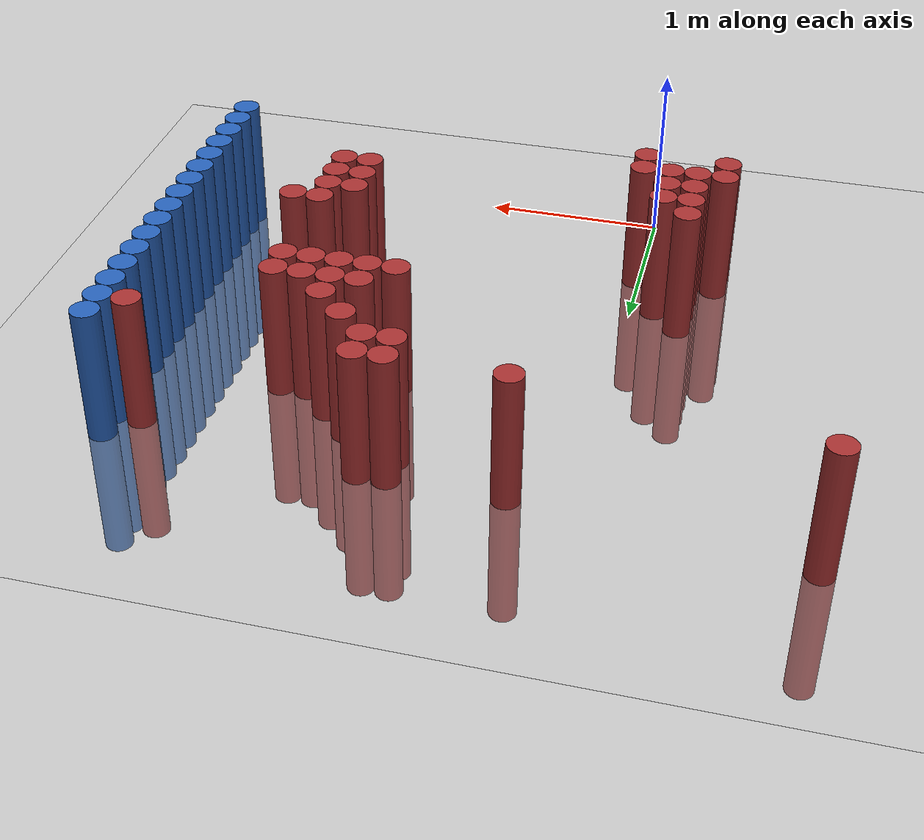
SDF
<sdf version="1.6">
 <world name="default">
  <model name="ground_plane">
   <static>1</static>
   <link name="link">
    <collision name="collision">
     <geometry><plane><normal>0 0 1</normal><size>100 100</size></plane></geometry>
     <surface><friction><ode><mu>100</mu><mu2>50</mu2></ode></friction></surface>
    </collision>
    <visual name="visual">
     <cast_shadows>0</cast_shadows>
     <geometry><plane><normal>0 0 1</normal><size>100 100</size></plane></geometry>
     <material>
      <script><uri>file://media/materials/scripts/gazebo.material</uri><name>Gazebo/Grey</name></script>
     </material>
    </visual>
   </link>
  </model>
  <model name="unit_cylinder_154">
   <static>1</static>
   <pose>-1.175000 2.875000 0.000000 0.000000 0.000000 0.000000</pose>
   <link name="link">
    <inertial>
     <mass>1</mass>
     <inertia><ixx>0.145833</ixx><ixy>0</ixy><ixz>0</ixz><iyy>0.145833</iyy><iyz>0</iyz><izz>0.125</izz></inertia>
    </inertial>
    <collision name="collision">
     <geometry><cylinder><radius>0.075000</radius><length>1.5</length></cylinder></geometry>
    </collision>
    <visual name="visual">
     <geometry><cylinder><radius>0.075000</radius><length>1.5</length></cylinder></geometry>
     <material>
      <ambient>0.648000 0.192000 0.192000 1</ambient>
      <diffuse>0.648000 0.192000 0.192000 1</diffuse>
     </material>
     <material>
      <script><name>Gazebo/Grey</name><uri>file://media/materials/scripts/gazebo.material</uri></script>
     </material>
    </visual>
   </link>
  </model>
  <model name="unit_cylinder_169">
   <static>1</static>
   <pose>-0.425000 0.475000 0.000000 0.000000 0.000000 0.000000</pose>
   <link name="link">
    <inertial>
     <mass>1</mass>
     <inertia><ixx>0.145833</ixx><ixy>0</ixy><ixz>0</ixz><iyy>0.145833</iyy><iyz>0</iyz><izz>0.125</izz></inertia>
    </inertial>
    <collision name="collision">
     <geometry><cylinder><radius>0.075000</radius><length>1.5</length></cylinder></geometry>
    </collision>
    <visual name="visual">
     <geometry><cylinder><radius>0.075000</radius><length>1.5</length></cylinder></geometry>
     <material>
      <ambient>0.648000 0.192000 0.192000 1</ambient>
      <diffuse>0.648000 0.192000 0.192000 1</diffuse>
     </material>
     <material>
      <script><name>Gazebo/Grey</name><uri>file://media/materials/scripts/gazebo.material</uri></script>
     </material>
    </visual>
   </link>
  </model>
  <model name="unit_cylinder_170">
   <static>1</static>
   <pose>-0.425000 0.625000 0.000000 0.000000 0.000000 0.000000</pose>
   <link name="link">
    <inertial>
     <mass>1</mass>
     <inertia><ixx>0.145833</ixx><ixy>0</ixy><ixz>0</ixz><iyy>0.145833</iyy><iyz>0</iyz><izz>0.125</izz></inertia>
    </inertial>
    <collision name="collision">
     <geometry><cylinder><radius>0.075000</radius><length>1.5</length></cylinder></geometry>
    </collision>
    <visual name="visual">
     <geometry><cylinder><radius>0.075000</radius><length>1.5</length></cylinder></geometry>
     <material>
      <ambient>0.648000 0.192000 0.192000 1</ambient>
      <diffuse>0.648000 0.192000 0.192000 1</diffuse>
     </material>
     <material>
      <script><name>Gazebo/Grey</name><uri>file://media/materials/scripts/gazebo.material</uri></script>
     </material>
    </visual>
   </link>
  </model>
  <model name="unit_cylinder_172">
   <static>1</static>
   <pose>-0.275000 0.625000 0.000000 0.000000 0.000000 0.000000</pose>
   <link name="link">
    <inertial>
     <mass>1</mass>
     <inertia><ixx>0.145833</ixx><ixy>0</ixy><ixz>0</ixz><iyy>0.145833</iyy><iyz>0</iyz><izz>0.125</izz></inertia>
    </inertial>
    <collision name="collision">
     <geometry><cylinder><radius>0.075000</radius><length>1.5</length></cylinder></geometry>
    </collision>
    <visual name="visual">
     <geometry><cylinder><radius>0.075000</radius><length>1.5</length></cylinder></geometry>
     <material>
      <ambient>0.648000 0.192000 0.192000 1</ambient>
      <diffuse>0.648000 0.192000 0.192000 1</diffuse>
     </material>
     <material>
      <script><name>Gazebo/Grey</name><uri>file://media/materials/scripts/gazebo.material</uri></script>
     </material>
    </visual>
   </link>
  </model>
  <model name="unit_cylinder_173">
   <static>1</static>
   <pose>-0.275000 0.775000 0.000000 0.000000 0.000000 0.000000</pose>
   <link name="link">
    <inertial>
     <mass>1</mass>
     <inertia><ixx>0.145833</ixx><ixy>0</ixy><ixz>0</ixz><iyy>0.145833</iyy><iyz>0</iyz><izz>0.125</izz></inertia>
    </inertial>
    <collision name="collision">
     <geometry><cylinder><radius>0.075000</radius><length>1.5</length></cylinder></geometry>
    </collision>
    <visual name="visual">
     <geometry><cylinder><radius>0.075000</radius><length>1.5</length></cylinder></geometry>
     <material>
      <ambient>0.648000 0.192000 0.192000 1</ambient>
      <diffuse>0.648000 0.192000 0.192000 1</diffuse>
     </material>
     <material>
      <script><name>Gazebo/Grey</name><uri>file://media/materials/scripts/gazebo.material</uri></script>
     </material>
    </visual>
   </link>
  </model>
  <model name="unit_cylinder_174">
   <static>1</static>
   <pose>-0.275000 0.925000 0.000000 0.000000 0.000000 0.000000</pose>
   <link name="link">
    <inertial>
     <mass>1</mass>
     <inertia><ixx>0.145833</ixx><ixy>0</ixy><ixz>0</ixz><iyy>0.145833</iyy><iyz>0</iyz><izz>0.125</izz></inertia>
    </inertial>
    <collision name="collision">
     <geometry><cylinder><radius>0.075000</radius><length>1.5</length></cylinder></geometry>
    </collision>
    <visual name="visual">
     <geometry><cylinder><radius>0.075000</radius><length>1.5</length></cylinder></geometry>
     <material>
      <ambient>0.648000 0.192000 0.192000 1</ambient>
      <diffuse>0.648000 0.192000 0.192000 1</diffuse>
     </material>
     <material>
      <script><name>Gazebo/Grey</name><uri>file://media/materials/scripts/gazebo.material</uri></script>
     </material>
    </visual>
   </link>
  </model>
  <model name="unit_cylinder_175">
   <static>1</static>
   <pose>-0.275000 1.075000 0.000000 0.000000 0.000000 0.000000</pose>
   <link name="link">
    <inertial>
     <mass>1</mass>
     <inertia><ixx>0.145833</ixx><ixy>0</ixy><ixz>0</ixz><iyy>0.145833</iyy><iyz>0</iyz><izz>0.125</izz></inertia>
    </inertial>
    <collision name="collision">
     <geometry><cylinder><radius>0.075000</radius><length>1.5</length></cylinder></geometry>
    </collision>
    <visual name="visual">
     <geometry><cylinder><radius>0.075000</radius><length>1.5</length></cylinder></geometry>
     <material>
      <ambient>0.648000 0.192000 0.192000 1</ambient>
      <diffuse>0.648000 0.192000 0.192000 1</diffuse>
     </material>
     <material>
      <script><name>Gazebo/Grey</name><uri>file://media/materials/scripts/gazebo.material</uri></script>
     </material>
    </visual>
   </link>
  </model>
  <model name="unit_cylinder_176">
   <static>1</static>
   <pose>-0.125000 0.625000 0.000000 0.000000 0.000000 0.000000</pose>
   <link name="link">
    <inertial>
     <mass>1</mass>
     <inertia><ixx>0.145833</ixx><ixy>0</ixy><ixz>0</ixz><iyy>0.145833</iyy><iyz>0</iyz><izz>0.125</izz></inertia>
    </inertial>
    <collision name="collision">
     <geometry><cylinder><radius>0.075000</radius><length>1.5</length></cylinder></geometry>
    </collision>
    <visual name="visual">
     <geometry><cylinder><radius>0.075000</radius><length>1.5</length></cylinder></geometry>
     <material>
      <ambient>0.648000 0.192000 0.192000 1</ambient>
      <diffuse>0.648000 0.192000 0.192000 1</diffuse>
     </material>
     <material>
      <script><name>Gazebo/Grey</name><uri>file://media/materials/scripts/gazebo.material</uri></script>
     </material>
    </visual>
   </link>
  </model>
  <model name="unit_cylinder_177">
   <static>1</static>
   <pose>-0.125000 0.775000 0.000000 0.000000 0.000000 0.000000</pose>
   <link name="link">
    <inertial>
     <mass>1</mass>
     <inertia><ixx>0.145833</ixx><ixy>0</ixy><ixz>0</ixz><iyy>0.145833</iyy><iyz>0</iyz><izz>0.125</izz></inertia>
    </inertial>
    <collision name="collision">
     <geometry><cylinder><radius>0.075000</radius><length>1.5</length></cylinder></geometry>
    </collision>
    <visual name="visual">
     <geometry><cylinder><radius>0.075000</radius><length>1.5</length></cylinder></geometry>
     <material>
      <ambient>0.648000 0.192000 0.192000 1</ambient>
      <diffuse>0.648000 0.192000 0.192000 1</diffuse>
     </material>
     <material>
      <script><name>Gazebo/Grey</name><uri>file://media/materials/scripts/gazebo.material</uri></script>
     </material>
    </visual>
   </link>
  </model>
  <model name="unit_cylinder_178">
   <static>1</static>
   <pose>-0.125000 0.925000 0.000000 0.000000 0.000000 0.000000</pose>
   <link name="link">
    <inertial>
     <mass>1</mass>
     <inertia><ixx>0.145833</ixx><ixy>0</ixy><ixz>0</ixz><iyy>0.145833</iyy><iyz>0</iyz><izz>0.125</izz></inertia>
    </inertial>
    <collision name="collision">
     <geometry><cylinder><radius>0.075000</radius><length>1.5</length></cylinder></geometry>
    </collision>
    <visual name="visual">
     <geometry><cylinder><radius>0.075000</radius><length>1.5</length></cylinder></geometry>
     <material>
      <ambient>0.648000 0.192000 0.192000 1</ambient>
      <diffuse>0.648000 0.192000 0.192000 1</diffuse>
     </material>
     <material>
      <script><name>Gazebo/Grey</name><uri>file://media/materials/scripts/gazebo.material</uri></script>
     </material>
    </visual>
   </link>
  </model>
  <model name="unit_cylinder_179">
   <static>1</static>
   <pose>0.025000 0.475000 0.000000 0.000000 0.000000 0.000000</pose>
   <link name="link">
    <inertial>
     <mass>1</mass>
     <inertia><ixx>0.145833</ixx><ixy>0</ixy><ixz>0</ixz><iyy>0.145833</iyy><iyz>0</iyz><izz>0.125</izz></inertia>
    </inertial>
    <collision name="collision">
     <geometry><cylinder><radius>0.075000</radius><length>1.5</length></cylinder></geometry>
    </collision>
    <visual name="visual">
     <geometry><cylinder><radius>0.075000</radius><length>1.5</length></cylinder></geometry>
     <material>
      <ambient>0.648000 0.192000 0.192000 1</ambient>
      <diffuse>0.648000 0.192000 0.192000 1</diffuse>
     </material>
     <material>
      <script><name>Gazebo/Grey</name><uri>file://media/materials/scripts/gazebo.material</uri></script>
     </material>
    </visual>
   </link>
  </model>
  <model name="unit_cylinder_180">
   <static>1</static>
   <pose>0.025000 0.625000 0.000000 0.000000 0.000000 0.000000</pose>
   <link name="link">
    <inertial>
     <mass>1</mass>
     <inertia><ixx>0.145833</ixx><ixy>0</ixy><ixz>0</ixz><iyy>0.145833</iyy><iyz>0</iyz><izz>0.125</izz></inertia>
    </inertial>
    <collision name="collision">
     <geometry><cylinder><radius>0.075000</radius><length>1.5</length></cylinder></geometry>
    </collision>
    <visual name="visual">
     <geometry><cylinder><radius>0.075000</radius><length>1.5</length></cylinder></geometry>
     <material>
      <ambient>0.648000 0.192000 0.192000 1</ambient>
      <diffuse>0.648000 0.192000 0.192000 1</diffuse>
     </material>
     <material>
      <script><name>Gazebo/Grey</name><uri>file://media/materials/scripts/gazebo.material</uri></script>
     </material>
    </visual>
   </link>
  </model>
  <model name="unit_cylinder_181">
   <static>1</static>
   <pose>0.325000 2.725000 0.000000 0.000000 0.000000 0.000000</pose>
   <link name="link">
    <inertial>
     <mass>1</mass>
     <inertia><ixx>0.145833</ixx><ixy>0</ixy><ixz>0</ixz><iyy>0.145833</iyy><iyz>0</iyz><izz>0.125</izz></inertia>
    </inertial>
    <collision name="collision">
     <geometry><cylinder><radius>0.075000</radius><length>1.5</length></cylinder></geometry>
    </collision>
    <visual name="visual">
     <geometry><cylinder><radius>0.075000</radius><length>1.5</length></cylinder></geometry>
     <material>
      <ambient>0.648000 0.192000 0.192000 1</ambient>
      <diffuse>0.648000 0.192000 0.192000 1</diffuse>
     </material>
     <material>
      <script><name>Gazebo/Grey</name><uri>file://media/materials/scripts/gazebo.material</uri></script>
     </material>
    </visual>
   </link>
  </model>
  <model name="unit_cylinder_198">
   <static>1</static>
   <pose>0.925000 2.575000 0.000000 0.000000 0.000000 0.000000</pose>
   <link name="link">
    <inertial>
     <mass>1</mass>
     <inertia><ixx>0.145833</ixx><ixy>0</ixy><ixz>0</ixz><iyy>0.145833</iyy><iyz>0</iyz><izz>0.125</izz></inertia>
    </inertial>
    <collision name="collision">
     <geometry><cylinder><radius>0.075000</radius><length>1.5</length></cylinder></geometry>
    </collision>
    <visual name="visual">
     <geometry><cylinder><radius>0.075000</radius><length>1.5</length></cylinder></geometry>
     <material>
      <ambient>0.648000 0.192000 0.192000 1</ambient>
      <diffuse>0.648000 0.192000 0.192000 1</diffuse>
     </material>
     <material>
      <script><name>Gazebo/Grey</name><uri>file://media/materials/scripts/gazebo.material</uri></script>
     </material>
    </visual>
   </link>
  </model>
  <model name="unit_cylinder_199">
   <static>1</static>
   <pose>0.925000 2.725000 0.000000 0.000000 0.000000 0.000000</pose>
   <link name="link">
    <inertial>
     <mass>1</mass>
     <inertia><ixx>0.145833</ixx><ixy>0</ixy><ixz>0</ixz><iyy>0.145833</iyy><iyz>0</iyz><izz>0.125</izz></inertia>
    </inertial>
    <collision name="collision">
     <geometry><cylinder><radius>0.075000</radius><length>1.5</length></cylinder></geometry>
    </collision>
    <visual name="visual">
     <geometry><cylinder><radius>0.075000</radius><length>1.5</length></cylinder></geometry>
     <material>
      <ambient>0.648000 0.192000 0.192000 1</ambient>
      <diffuse>0.648000 0.192000 0.192000 1</diffuse>
     </material>
     <material>
      <script><name>Gazebo/Grey</name><uri>file://media/materials/scripts/gazebo.material</uri></script>
     </material>
    </visual>
   </link>
  </model>
  <model name="unit_cylinder_200">
   <static>1</static>
   <pose>1.075000 1.975000 0.000000 0.000000 0.000000 0.000000</pose>
   <link name="link">
    <inertial>
     <mass>1</mass>
     <inertia><ixx>0.145833</ixx><ixy>0</ixy><ixz>0</ixz><iyy>0.145833</iyy><iyz>0</iyz><izz>0.125</izz></inertia>
    </inertial>
    <collision name="collision">
     <geometry><cylinder><radius>0.075000</radius><length>1.5</length></cylinder></geometry>
    </collision>
    <visual name="visual">
     <geometry><cylinder><radius>0.075000</radius><length>1.5</length></cylinder></geometry>
     <material>
      <ambient>0.648000 0.192000 0.192000 1</ambient>
      <diffuse>0.648000 0.192000 0.192000 1</diffuse>
     </material>
     <material>
      <script><name>Gazebo/Grey</name><uri>file://media/materials/scripts/gazebo.material</uri></script>
     </material>
    </visual>
   </link>
  </model>
  <model name="unit_cylinder_201">
   <static>1</static>
   <pose>1.075000 2.575000 0.000000 0.000000 0.000000 0.000000</pose>
   <link name="link">
    <inertial>
     <mass>1</mass>
     <inertia><ixx>0.145833</ixx><ixy>0</ixy><ixz>0</ixz><iyy>0.145833</iyy><iyz>0</iyz><izz>0.125</izz></inertia>
    </inertial>
    <collision name="collision">
     <geometry><cylinder><radius>0.075000</radius><length>1.5</length></cylinder></geometry>
    </collision>
    <visual name="visual">
     <geometry><cylinder><radius>0.075000</radius><length>1.5</length></cylinder></geometry>
     <material>
      <ambient>0.648000 0.192000 0.192000 1</ambient>
      <diffuse>0.648000 0.192000 0.192000 1</diffuse>
     </material>
     <material>
      <script><name>Gazebo/Grey</name><uri>file://media/materials/scripts/gazebo.material</uri></script>
     </material>
    </visual>
   </link>
  </model>
  <model name="unit_cylinder_202">
   <static>1</static>
   <pose>1.075000 2.725000 0.000000 0.000000 0.000000 0.000000</pose>
   <link name="link">
    <inertial>
     <mass>1</mass>
     <inertia><ixx>0.145833</ixx><ixy>0</ixy><ixz>0</ixz><iyy>0.145833</iyy><iyz>0</iyz><izz>0.125</izz></inertia>
    </inertial>
    <collision name="collision">
     <geometry><cylinder><radius>0.075000</radius><length>1.5</length></cylinder></geometry>
    </collision>
    <visual name="visual">
     <geometry><cylinder><radius>0.075000</radius><length>1.5</length></cylinder></geometry>
     <material>
      <ambient>0.648000 0.192000 0.192000 1</ambient>
      <diffuse>0.648000 0.192000 0.192000 1</diffuse>
     </material>
     <material>
      <script><name>Gazebo/Grey</name><uri>file://media/materials/scripts/gazebo.material</uri></script>
     </material>
    </visual>
   </link>
  </model>
  <model name="unit_cylinder_204">
   <static>1</static>
   <pose>1.225000 1.975000 0.000000 0.000000 0.000000 0.000000</pose>
   <link name="link">
    <inertial>
     <mass>1</mass>
     <inertia><ixx>0.145833</ixx><ixy>0</ixy><ixz>0</ixz><iyy>0.145833</iyy><iyz>0</iyz><izz>0.125</izz></inertia>
    </inertial>
    <collision name="collision">
     <geometry><cylinder><radius>0.075000</radius><length>1.5</length></cylinder></geometry>
    </collision>
    <visual name="visual">
     <geometry><cylinder><radius>0.075000</radius><length>1.5</length></cylinder></geometry>
     <material>
      <ambient>0.648000 0.192000 0.192000 1</ambient>
      <diffuse>0.648000 0.192000 0.192000 1</diffuse>
     </material>
     <material>
      <script><name>Gazebo/Grey</name><uri>file://media/materials/scripts/gazebo.material</uri></script>
     </material>
    </visual>
   </link>
  </model>
  <model name="unit_cylinder_205">
   <static>1</static>
   <pose>1.225000 2.125000 0.000000 0.000000 0.000000 0.000000</pose>
   <link name="link">
    <inertial>
     <mass>1</mass>
     <inertia><ixx>0.145833</ixx><ixy>0</ixy><ixz>0</ixz><iyy>0.145833</iyy><iyz>0</iyz><izz>0.125</izz></inertia>
    </inertial>
    <collision name="collision">
     <geometry><cylinder><radius>0.075000</radius><length>1.5</length></cylinder></geometry>
    </collision>
    <visual name="visual">
     <geometry><cylinder><radius>0.075000</radius><length>1.5</length></cylinder></geometry>
     <material>
      <ambient>0.648000 0.192000 0.192000 1</ambient>
      <diffuse>0.648000 0.192000 0.192000 1</diffuse>
     </material>
     <material>
      <script><name>Gazebo/Grey</name><uri>file://media/materials/scripts/gazebo.material</uri></script>
     </material>
    </visual>
   </link>
  </model>
  <model name="unit_cylinder_206">
   <static>1</static>
   <pose>1.225000 2.425000 0.000000 0.000000 0.000000 0.000000</pose>
   <link name="link">
    <inertial>
     <mass>1</mass>
     <inertia><ixx>0.145833</ixx><ixy>0</ixy><ixz>0</ixz><iyy>0.145833</iyy><iyz>0</iyz><izz>0.125</izz></inertia>
    </inertial>
    <collision name="collision">
     <geometry><cylinder><radius>0.075000</radius><length>1.5</length></cylinder></geometry>
    </collision>
    <visual name="visual">
     <geometry><cylinder><radius>0.075000</radius><length>1.5</length></cylinder></geometry>
     <material>
      <ambient>0.648000 0.192000 0.192000 1</ambient>
      <diffuse>0.648000 0.192000 0.192000 1</diffuse>
     </material>
     <material>
      <script><name>Gazebo/Grey</name><uri>file://media/materials/scripts/gazebo.material</uri></script>
     </material>
    </visual>
   </link>
  </model>
  <model name="unit_cylinder_207">
   <static>1</static>
   <pose>1.375000 1.975000 0.000000 0.000000 0.000000 0.000000</pose>
   <link name="link">
    <inertial>
     <mass>1</mass>
     <inertia><ixx>0.145833</ixx><ixy>0</ixy><ixz>0</ixz><iyy>0.145833</iyy><iyz>0</iyz><izz>0.125</izz></inertia>
    </inertial>
    <collision name="collision">
     <geometry><cylinder><radius>0.075000</radius><length>1.5</length></cylinder></geometry>
    </collision>
    <visual name="visual">
     <geometry><cylinder><radius>0.075000</radius><length>1.5</length></cylinder></geometry>
     <material>
      <ambient>0.648000 0.192000 0.192000 1</ambient>
      <diffuse>0.648000 0.192000 0.192000 1</diffuse>
     </material>
     <material>
      <script><name>Gazebo/Grey</name><uri>file://media/materials/scripts/gazebo.material</uri></script>
     </material>
    </visual>
   </link>
  </model>
  <model name="unit_cylinder_208">
   <static>1</static>
   <pose>1.375000 2.125000 0.000000 0.000000 0.000000 0.000000</pose>
   <link name="link">
    <inertial>
     <mass>1</mass>
     <inertia><ixx>0.145833</ixx><ixy>0</ixy><ixz>0</ixz><iyy>0.145833</iyy><iyz>0</iyz><izz>0.125</izz></inertia>
    </inertial>
    <collision name="collision">
     <geometry><cylinder><radius>0.075000</radius><length>1.5</length></cylinder></geometry>
    </collision>
    <visual name="visual">
     <geometry><cylinder><radius>0.075000</radius><length>1.5</length></cylinder></geometry>
     <material>
      <ambient>0.648000 0.192000 0.192000 1</ambient>
      <diffuse>0.648000 0.192000 0.192000 1</diffuse>
     </material>
     <material>
      <script><name>Gazebo/Grey</name><uri>file://media/materials/scripts/gazebo.material</uri></script>
     </material>
    </visual>
   </link>
  </model>
  <model name="unit_cylinder_209">
   <static>1</static>
   <pose>1.375000 2.275000 0.000000 0.000000 0.000000 0.000000</pose>
   <link name="link">
    <inertial>
     <mass>1</mass>
     <inertia><ixx>0.145833</ixx><ixy>0</ixy><ixz>0</ixz><iyy>0.145833</iyy><iyz>0</iyz><izz>0.125</izz></inertia>
    </inertial>
    <collision name="collision">
     <geometry><cylinder><radius>0.075000</radius><length>1.5</length></cylinder></geometry>
    </collision>
    <visual name="visual">
     <geometry><cylinder><radius>0.075000</radius><length>1.5</length></cylinder></geometry>
     <material>
      <ambient>0.648000 0.192000 0.192000 1</ambient>
      <diffuse>0.648000 0.192000 0.192000 1</diffuse>
     </material>
     <material>
      <script><name>Gazebo/Grey</name><uri>file://media/materials/scripts/gazebo.material</uri></script>
     </material>
    </visual>
   </link>
  </model>
  <model name="unit_cylinder_211">
   <static>1</static>
   <pose>1.525000 0.925000 0.000000 0.000000 0.000000 0.000000</pose>
   <link name="link">
    <inertial>
     <mass>1</mass>
     <inertia><ixx>0.145833</ixx><ixy>0</ixy><ixz>0</ixz><iyy>0.145833</iyy><iyz>0</iyz><izz>0.125</izz></inertia>
    </inertial>
    <collision name="collision">
     <geometry><cylinder><radius>0.075000</radius><length>1.5</length></cylinder></geometry>
    </collision>
    <visual name="visual">
     <geometry><cylinder><radius>0.075000</radius><length>1.5</length></cylinder></geometry>
     <material>
      <ambient>0.648000 0.192000 0.192000 1</ambient>
      <diffuse>0.648000 0.192000 0.192000 1</diffuse>
     </material>
     <material>
      <script><name>Gazebo/Grey</name><uri>file://media/materials/scripts/gazebo.material</uri></script>
     </material>
    </visual>
   </link>
  </model>
  <model name="unit_cylinder_212">
   <static>1</static>
   <pose>1.525000 1.075000 0.000000 0.000000 0.000000 0.000000</pose>
   <link name="link">
    <inertial>
     <mass>1</mass>
     <inertia><ixx>0.145833</ixx><ixy>0</ixy><ixz>0</ixz><iyy>0.145833</iyy><iyz>0</iyz><izz>0.125</izz></inertia>
    </inertial>
    <collision name="collision">
     <geometry><cylinder><radius>0.075000</radius><length>1.5</length></cylinder></geometry>
    </collision>
    <visual name="visual">
     <geometry><cylinder><radius>0.075000</radius><length>1.5</length></cylinder></geometry>
     <material>
      <ambient>0.648000 0.192000 0.192000 1</ambient>
      <diffuse>0.648000 0.192000 0.192000 1</diffuse>
     </material>
     <material>
      <script><name>Gazebo/Grey</name><uri>file://media/materials/scripts/gazebo.material</uri></script>
     </material>
    </visual>
   </link>
  </model>
  <model name="unit_cylinder_213">
   <static>1</static>
   <pose>1.525000 1.225000 0.000000 0.000000 0.000000 0.000000</pose>
   <link name="link">
    <inertial>
     <mass>1</mass>
     <inertia><ixx>0.145833</ixx><ixy>0</ixy><ixz>0</ixz><iyy>0.145833</iyy><iyz>0</iyz><izz>0.125</izz></inertia>
    </inertial>
    <collision name="collision">
     <geometry><cylinder><radius>0.075000</radius><length>1.5</length></cylinder></geometry>
    </collision>
    <visual name="visual">
     <geometry><cylinder><radius>0.075000</radius><length>1.5</length></cylinder></geometry>
     <material>
      <ambient>0.648000 0.192000 0.192000 1</ambient>
      <diffuse>0.648000 0.192000 0.192000 1</diffuse>
     </material>
     <material>
      <script><name>Gazebo/Grey</name><uri>file://media/materials/scripts/gazebo.material</uri></script>
     </material>
    </visual>
   </link>
  </model>
  <model name="unit_cylinder_214">
   <static>1</static>
   <pose>1.525000 1.975000 0.000000 0.000000 0.000000 0.000000</pose>
   <link name="link">
    <inertial>
     <mass>1</mass>
     <inertia><ixx>0.145833</ixx><ixy>0</ixy><ixz>0</ixz><iyy>0.145833</iyy><iyz>0</iyz><izz>0.125</izz></inertia>
    </inertial>
    <collision name="collision">
     <geometry><cylinder><radius>0.075000</radius><length>1.5</length></cylinder></geometry>
    </collision>
    <visual name="visual">
     <geometry><cylinder><radius>0.075000</radius><length>1.5</length></cylinder></geometry>
     <material>
      <ambient>0.648000 0.192000 0.192000 1</ambient>
      <diffuse>0.648000 0.192000 0.192000 1</diffuse>
     </material>
     <material>
      <script><name>Gazebo/Grey</name><uri>file://media/materials/scripts/gazebo.material</uri></script>
     </material>
    </visual>
   </link>
  </model>
  <model name="unit_cylinder_215">
   <static>1</static>
   <pose>1.525000 2.125000 0.000000 0.000000 0.000000 0.000000</pose>
   <link name="link">
    <inertial>
     <mass>1</mass>
     <inertia><ixx>0.145833</ixx><ixy>0</ixy><ixz>0</ixz><iyy>0.145833</iyy><iyz>0</iyz><izz>0.125</izz></inertia>
    </inertial>
    <collision name="collision">
     <geometry><cylinder><radius>0.075000</radius><length>1.5</length></cylinder></geometry>
    </collision>
    <visual name="visual">
     <geometry><cylinder><radius>0.075000</radius><length>1.5</length></cylinder></geometry>
     <material>
      <ambient>0.648000 0.192000 0.192000 1</ambient>
      <diffuse>0.648000 0.192000 0.192000 1</diffuse>
     </material>
     <material>
      <script><name>Gazebo/Grey</name><uri>file://media/materials/scripts/gazebo.material</uri></script>
     </material>
    </visual>
   </link>
  </model>
  <model name="unit_cylinder_219">
   <static>1</static>
   <pose>1.675000 0.925000 0.000000 0.000000 0.000000 0.000000</pose>
   <link name="link">
    <inertial>
     <mass>1</mass>
     <inertia><ixx>0.145833</ixx><ixy>0</ixy><ixz>0</ixz><iyy>0.145833</iyy><iyz>0</iyz><izz>0.125</izz></inertia>
    </inertial>
    <collision name="collision">
     <geometry><cylinder><radius>0.075000</radius><length>1.5</length></cylinder></geometry>
    </collision>
    <visual name="visual">
     <geometry><cylinder><radius>0.075000</radius><length>1.5</length></cylinder></geometry>
     <material>
      <ambient>0.648000 0.192000 0.192000 1</ambient>
      <diffuse>0.648000 0.192000 0.192000 1</diffuse>
     </material>
     <material>
      <script><name>Gazebo/Grey</name><uri>file://media/materials/scripts/gazebo.material</uri></script>
     </material>
    </visual>
   </link>
  </model>
  <model name="unit_cylinder_220">
   <static>1</static>
   <pose>1.675000 1.075000 0.000000 0.000000 0.000000 0.000000</pose>
   <link name="link">
    <inertial>
     <mass>1</mass>
     <inertia><ixx>0.145833</ixx><ixy>0</ixy><ixz>0</ixz><iyy>0.145833</iyy><iyz>0</iyz><izz>0.125</izz></inertia>
    </inertial>
    <collision name="collision">
     <geometry><cylinder><radius>0.075000</radius><length>1.5</length></cylinder></geometry>
    </collision>
    <visual name="visual">
     <geometry><cylinder><radius>0.075000</radius><length>1.5</length></cylinder></geometry>
     <material>
      <ambient>0.648000 0.192000 0.192000 1</ambient>
      <diffuse>0.648000 0.192000 0.192000 1</diffuse>
     </material>
     <material>
      <script><name>Gazebo/Grey</name><uri>file://media/materials/scripts/gazebo.material</uri></script>
     </material>
    </visual>
   </link>
  </model>
  <model name="unit_cylinder_221">
   <static>1</static>
   <pose>1.675000 1.225000 0.000000 0.000000 0.000000 0.000000</pose>
   <link name="link">
    <inertial>
     <mass>1</mass>
     <inertia><ixx>0.145833</ixx><ixy>0</ixy><ixz>0</ixz><iyy>0.145833</iyy><iyz>0</iyz><izz>0.125</izz></inertia>
    </inertial>
    <collision name="collision">
     <geometry><cylinder><radius>0.075000</radius><length>1.5</length></cylinder></geometry>
    </collision>
    <visual name="visual">
     <geometry><cylinder><radius>0.075000</radius><length>1.5</length></cylinder></geometry>
     <material>
      <ambient>0.648000 0.192000 0.192000 1</ambient>
      <diffuse>0.648000 0.192000 0.192000 1</diffuse>
     </material>
     <material>
      <script><name>Gazebo/Grey</name><uri>file://media/materials/scripts/gazebo.material</uri></script>
     </material>
    </visual>
   </link>
  </model>
  <model name="unit_cylinder_222">
   <static>1</static>
   <pose>1.675000 1.375000 0.000000 0.000000 0.000000 0.000000</pose>
   <link name="link">
    <inertial>
     <mass>1</mass>
     <inertia><ixx>0.145833</ixx><ixy>0</ixy><ixz>0</ixz><iyy>0.145833</iyy><iyz>0</iyz><izz>0.125</izz></inertia>
    </inertial>
    <collision name="collision">
     <geometry><cylinder><radius>0.075000</radius><length>1.5</length></cylinder></geometry>
    </collision>
    <visual name="visual">
     <geometry><cylinder><radius>0.075000</radius><length>1.5</length></cylinder></geometry>
     <material>
      <ambient>0.648000 0.192000 0.192000 1</ambient>
      <diffuse>0.648000 0.192000 0.192000 1</diffuse>
     </material>
     <material>
      <script><name>Gazebo/Grey</name><uri>file://media/materials/scripts/gazebo.material</uri></script>
     </material>
    </visual>
   </link>
  </model>
  <model name="unit_cylinder_223">
   <static>1</static>
   <pose>1.675000 1.975000 0.000000 0.000000 0.000000 0.000000</pose>
   <link name="link">
    <inertial>
     <mass>1</mass>
     <inertia><ixx>0.145833</ixx><ixy>0</ixy><ixz>0</ixz><iyy>0.145833</iyy><iyz>0</iyz><izz>0.125</izz></inertia>
    </inertial>
    <collision name="collision">
     <geometry><cylinder><radius>0.075000</radius><length>1.5</length></cylinder></geometry>
    </collision>
    <visual name="visual">
     <geometry><cylinder><radius>0.075000</radius><length>1.5</length></cylinder></geometry>
     <material>
      <ambient>0.648000 0.192000 0.192000 1</ambient>
      <diffuse>0.648000 0.192000 0.192000 1</diffuse>
     </material>
     <material>
      <script><name>Gazebo/Grey</name><uri>file://media/materials/scripts/gazebo.material</uri></script>
     </material>
    </visual>
   </link>
  </model>
  <model name="unit_cylinder_224">
   <static>1</static>
   <pose>1.675000 2.125000 0.000000 0.000000 0.000000 0.000000</pose>
   <link name="link">
    <inertial>
     <mass>1</mass>
     <inertia><ixx>0.145833</ixx><ixy>0</ixy><ixz>0</ixz><iyy>0.145833</iyy><iyz>0</iyz><izz>0.125</izz></inertia>
    </inertial>
    <collision name="collision">
     <geometry><cylinder><radius>0.075000</radius><length>1.5</length></cylinder></geometry>
    </collision>
    <visual name="visual">
     <geometry><cylinder><radius>0.075000</radius><length>1.5</length></cylinder></geometry>
     <material>
      <ambient>0.648000 0.192000 0.192000 1</ambient>
      <diffuse>0.648000 0.192000 0.192000 1</diffuse>
     </material>
     <material>
      <script><name>Gazebo/Grey</name><uri>file://media/materials/scripts/gazebo.material</uri></script>
     </material>
    </visual>
   </link>
  </model>
  <model name="unit_cylinder_229">
   <static>1</static>
   <pose>1.825000 1.375000 0.000000 0.000000 0.000000 0.000000</pose>
   <link name="link">
    <inertial>
     <mass>1</mass>
     <inertia><ixx>0.145833</ixx><ixy>0</ixy><ixz>0</ixz><iyy>0.145833</iyy><iyz>0</iyz><izz>0.125</izz></inertia>
    </inertial>
    <collision name="collision">
     <geometry><cylinder><radius>0.075000</radius><length>1.5</length></cylinder></geometry>
    </collision>
    <visual name="visual">
     <geometry><cylinder><radius>0.075000</radius><length>1.5</length></cylinder></geometry>
     <material>
      <ambient>0.648000 0.192000 0.192000 1</ambient>
      <diffuse>0.648000 0.192000 0.192000 1</diffuse>
     </material>
     <material>
      <script><name>Gazebo/Grey</name><uri>file://media/materials/scripts/gazebo.material</uri></script>
     </material>
    </visual>
   </link>
  </model>
  <model name="unit_cylinder_234">
   <static>1</static>
   <pose>2.275000 2.575000 0.000000 0.000000 0.000000 0.000000</pose>
   <link name="link">
    <inertial>
     <mass>1</mass>
     <inertia><ixx>0.145833</ixx><ixy>0</ixy><ixz>0</ixz><iyy>0.145833</iyy><iyz>0</iyz><izz>0.125</izz></inertia>
    </inertial>
    <collision name="collision">
     <geometry><cylinder><radius>0.075000</radius><length>1.5</length></cylinder></geometry>
    </collision>
    <visual name="visual">
     <geometry><cylinder><radius>0.075000</radius><length>1.5</length></cylinder></geometry>
     <material>
      <ambient>0.648000 0.192000 0.192000 1</ambient>
      <diffuse>0.648000 0.192000 0.192000 1</diffuse>
     </material>
     <material>
      <script><name>Gazebo/Grey</name><uri>file://media/materials/scripts/gazebo.material</uri></script>
     </material>
    </visual>
   </link>
  </model>
  <model name="unit_cylinder_240">
   <static>1</static>
   <pose>2.425000 0.475000 0.000000 0.000000 0.000000 0.000000</pose>
   <link name="link">
    <inertial>
     <mass>1</mass>
     <inertia><ixx>0.145833</ixx><ixy>0</ixy><ixz>0</ixz><iyy>0.145833</iyy><iyz>0</iyz><izz>0.125</izz></inertia>
    </inertial>
    <collision name="collision">
     <geometry><cylinder><radius>0.075000</radius><length>1.5</length></cylinder></geometry>
    </collision>
    <visual name="visual">
     <geometry><cylinder><radius>0.075000</radius><length>1.5</length></cylinder></geometry>
     <material>
      <ambient>0.152000 0.379000 0.720000 1</ambient>
      <diffuse>0.152000 0.379000 0.720000 1</diffuse>
     </material>
     <material>
      <script><name>Gazebo/Grey</name><uri>file://media/materials/scripts/gazebo.material</uri></script>
     </material>
    </visual>
   </link>
  </model>
  <model name="unit_cylinder_241">
   <static>1</static>
   <pose>2.425000 0.625000 0.000000 0.000000 0.000000 0.000000</pose>
   <link name="link">
    <inertial>
     <mass>1</mass>
     <inertia><ixx>0.145833</ixx><ixy>0</ixy><ixz>0</ixz><iyy>0.145833</iyy><iyz>0</iyz><izz>0.125</izz></inertia>
    </inertial>
    <collision name="collision">
     <geometry><cylinder><radius>0.075000</radius><length>1.5</length></cylinder></geometry>
    </collision>
    <visual name="visual">
     <geometry><cylinder><radius>0.075000</radius><length>1.5</length></cylinder></geometry>
     <material>
      <ambient>0.152000 0.379000 0.720000 1</ambient>
      <diffuse>0.152000 0.379000 0.720000 1</diffuse>
     </material>
     <material>
      <script><name>Gazebo/Grey</name><uri>file://media/materials/scripts/gazebo.material</uri></script>
     </material>
    </visual>
   </link>
  </model>
  <model name="unit_cylinder_242">
   <static>1</static>
   <pose>2.425000 0.775000 0.000000 0.000000 0.000000 0.000000</pose>
   <link name="link">
    <inertial>
     <mass>1</mass>
     <inertia><ixx>0.145833</ixx><ixy>0</ixy><ixz>0</ixz><iyy>0.145833</iyy><iyz>0</iyz><izz>0.125</izz></inertia>
    </inertial>
    <collision name="collision">
     <geometry><cylinder><radius>0.075000</radius><length>1.5</length></cylinder></geometry>
    </collision>
    <visual name="visual">
     <geometry><cylinder><radius>0.075000</radius><length>1.5</length></cylinder></geometry>
     <material>
      <ambient>0.152000 0.379000 0.720000 1</ambient>
      <diffuse>0.152000 0.379000 0.720000 1</diffuse>
     </material>
     <material>
      <script><name>Gazebo/Grey</name><uri>file://media/materials/scripts/gazebo.material</uri></script>
     </material>
    </visual>
   </link>
  </model>
  <model name="unit_cylinder_243">
   <static>1</static>
   <pose>2.425000 0.925000 0.000000 0.000000 0.000000 0.000000</pose>
   <link name="link">
    <inertial>
     <mass>1</mass>
     <inertia><ixx>0.145833</ixx><ixy>0</ixy><ixz>0</ixz><iyy>0.145833</iyy><iyz>0</iyz><izz>0.125</izz></inertia>
    </inertial>
    <collision name="collision">
     <geometry><cylinder><radius>0.075000</radius><length>1.5</length></cylinder></geometry>
    </collision>
    <visual name="visual">
     <geometry><cylinder><radius>0.075000</radius><length>1.5</length></cylinder></geometry>
     <material>
      <ambient>0.152000 0.379000 0.720000 1</ambient>
      <diffuse>0.152000 0.379000 0.720000 1</diffuse>
     </material>
     <material>
      <script><name>Gazebo/Grey</name><uri>file://media/materials/scripts/gazebo.material</uri></script>
     </material>
    </visual>
   </link>
  </model>
  <model name="unit_cylinder_244">
   <static>1</static>
   <pose>2.425000 1.075000 0.000000 0.000000 0.000000 0.000000</pose>
   <link name="link">
    <inertial>
     <mass>1</mass>
     <inertia><ixx>0.145833</ixx><ixy>0</ixy><ixz>0</ixz><iyy>0.145833</iyy><iyz>0</iyz><izz>0.125</izz></inertia>
    </inertial>
    <collision name="collision">
     <geometry><cylinder><radius>0.075000</radius><length>1.5</length></cylinder></geometry>
    </collision>
    <visual name="visual">
     <geometry><cylinder><radius>0.075000</radius><length>1.5</length></cylinder></geometry>
     <material>
      <ambient>0.152000 0.379000 0.720000 1</ambient>
      <diffuse>0.152000 0.379000 0.720000 1</diffuse>
     </material>
     <material>
      <script><name>Gazebo/Grey</name><uri>file://media/materials/scripts/gazebo.material</uri></script>
     </material>
    </visual>
   </link>
  </model>
  <model name="unit_cylinder_245">
   <static>1</static>
   <pose>2.425000 1.225000 0.000000 0.000000 0.000000 0.000000</pose>
   <link name="link">
    <inertial>
     <mass>1</mass>
     <inertia><ixx>0.145833</ixx><ixy>0</ixy><ixz>0</ixz><iyy>0.145833</iyy><iyz>0</iyz><izz>0.125</izz></inertia>
    </inertial>
    <collision name="collision">
     <geometry><cylinder><radius>0.075000</radius><length>1.5</length></cylinder></geometry>
    </collision>
    <visual name="visual">
     <geometry><cylinder><radius>0.075000</radius><length>1.5</length></cylinder></geometry>
     <material>
      <ambient>0.152000 0.379000 0.720000 1</ambient>
      <diffuse>0.152000 0.379000 0.720000 1</diffuse>
     </material>
     <material>
      <script><name>Gazebo/Grey</name><uri>file://media/materials/scripts/gazebo.material</uri></script>
     </material>
    </visual>
   </link>
  </model>
  <model name="unit_cylinder_246">
   <static>1</static>
   <pose>2.425000 1.375000 0.000000 0.000000 0.000000 0.000000</pose>
   <link name="link">
    <inertial>
     <mass>1</mass>
     <inertia><ixx>0.145833</ixx><ixy>0</ixy><ixz>0</ixz><iyy>0.145833</iyy><iyz>0</iyz><izz>0.125</izz></inertia>
    </inertial>
    <collision name="collision">
     <geometry><cylinder><radius>0.075000</radius><length>1.5</length></cylinder></geometry>
    </collision>
    <visual name="visual">
     <geometry><cylinder><radius>0.075000</radius><length>1.5</length></cylinder></geometry>
     <material>
      <ambient>0.152000 0.379000 0.720000 1</ambient>
      <diffuse>0.152000 0.379000 0.720000 1</diffuse>
     </material>
     <material>
      <script><name>Gazebo/Grey</name><uri>file://media/materials/scripts/gazebo.material</uri></script>
     </material>
    </visual>
   </link>
  </model>
  <model name="unit_cylinder_247">
   <static>1</static>
   <pose>2.425000 1.525000 0.000000 0.000000 0.000000 0.000000</pose>
   <link name="link">
    <inertial>
     <mass>1</mass>
     <inertia><ixx>0.145833</ixx><ixy>0</ixy><ixz>0</ixz><iyy>0.145833</iyy><iyz>0</iyz><izz>0.125</izz></inertia>
    </inertial>
    <collision name="collision">
     <geometry><cylinder><radius>0.075000</radius><length>1.5</length></cylinder></geometry>
    </collision>
    <visual name="visual">
     <geometry><cylinder><radius>0.075000</radius><length>1.5</length></cylinder></geometry>
     <material>
      <ambient>0.152000 0.379000 0.720000 1</ambient>
      <diffuse>0.152000 0.379000 0.720000 1</diffuse>
     </material>
     <material>
      <script><name>Gazebo/Grey</name><uri>file://media/materials/scripts/gazebo.material</uri></script>
     </material>
    </visual>
   </link>
  </model>
  <model name="unit_cylinder_248">
   <static>1</static>
   <pose>2.425000 1.675000 0.000000 0.000000 0.000000 0.000000</pose>
   <link name="link">
    <inertial>
     <mass>1</mass>
     <inertia><ixx>0.145833</ixx><ixy>0</ixy><ixz>0</ixz><iyy>0.145833</iyy><iyz>0</iyz><izz>0.125</izz></inertia>
    </inertial>
    <collision name="collision">
     <geometry><cylinder><radius>0.075000</radius><length>1.5</length></cylinder></geometry>
    </collision>
    <visual name="visual">
     <geometry><cylinder><radius>0.075000</radius><length>1.5</length></cylinder></geometry>
     <material>
      <ambient>0.152000 0.379000 0.720000 1</ambient>
      <diffuse>0.152000 0.379000 0.720000 1</diffuse>
     </material>
     <material>
      <script><name>Gazebo/Grey</name><uri>file://media/materials/scripts/gazebo.material</uri></script>
     </material>
    </visual>
   </link>
  </model>
  <model name="unit_cylinder_249">
   <static>1</static>
   <pose>2.425000 1.825000 0.000000 0.000000 0.000000 0.000000</pose>
   <link name="link">
    <inertial>
     <mass>1</mass>
     <inertia><ixx>0.145833</ixx><ixy>0</ixy><ixz>0</ixz><iyy>0.145833</iyy><iyz>0</iyz><izz>0.125</izz></inertia>
    </inertial>
    <collision name="collision">
     <geometry><cylinder><radius>0.075000</radius><length>1.5</length></cylinder></geometry>
    </collision>
    <visual name="visual">
     <geometry><cylinder><radius>0.075000</radius><length>1.5</length></cylinder></geometry>
     <material>
      <ambient>0.152000 0.379000 0.720000 1</ambient>
      <diffuse>0.152000 0.379000 0.720000 1</diffuse>
     </material>
     <material>
      <script><name>Gazebo/Grey</name><uri>file://media/materials/scripts/gazebo.material</uri></script>
     </material>
    </visual>
   </link>
  </model>
  <model name="unit_cylinder_250">
   <static>1</static>
   <pose>2.425000 1.975000 0.000000 0.000000 0.000000 0.000000</pose>
   <link name="link">
    <inertial>
     <mass>1</mass>
     <inertia><ixx>0.145833</ixx><ixy>0</ixy><ixz>0</ixz><iyy>0.145833</iyy><iyz>0</iyz><izz>0.125</izz></inertia>
    </inertial>
    <collision name="collision">
     <geometry><cylinder><radius>0.075000</radius><length>1.5</length></cylinder></geometry>
    </collision>
    <visual name="visual">
     <geometry><cylinder><radius>0.075000</radius><length>1.5</length></cylinder></geometry>
     <material>
      <ambient>0.152000 0.379000 0.720000 1</ambient>
      <diffuse>0.152000 0.379000 0.720000 1</diffuse>
     </material>
     <material>
      <script><name>Gazebo/Grey</name><uri>file://media/materials/scripts/gazebo.material</uri></script>
     </material>
    </visual>
   </link>
  </model>
  <model name="unit_cylinder_251">
   <static>1</static>
   <pose>2.425000 2.125000 0.000000 0.000000 0.000000 0.000000</pose>
   <link name="link">
    <inertial>
     <mass>1</mass>
     <inertia><ixx>0.145833</ixx><ixy>0</ixy><ixz>0</ixz><iyy>0.145833</iyy><iyz>0</iyz><izz>0.125</izz></inertia>
    </inertial>
    <collision name="collision">
     <geometry><cylinder><radius>0.075000</radius><length>1.5</length></cylinder></geometry>
    </collision>
    <visual name="visual">
     <geometry><cylinder><radius>0.075000</radius><length>1.5</length></cylinder></geometry>
     <material>
      <ambient>0.152000 0.379000 0.720000 1</ambient>
      <diffuse>0.152000 0.379000 0.720000 1</diffuse>
     </material>
     <material>
      <script><name>Gazebo/Grey</name><uri>file://media/materials/scripts/gazebo.material</uri></script>
     </material>
    </visual>
   </link>
  </model>
  <model name="unit_cylinder_252">
   <static>1</static>
   <pose>2.425000 2.275000 0.000000 0.000000 0.000000 0.000000</pose>
   <link name="link">
    <inertial>
     <mass>1</mass>
     <inertia><ixx>0.145833</ixx><ixy>0</ixy><ixz>0</ixz><iyy>0.145833</iyy><iyz>0</iyz><izz>0.125</izz></inertia>
    </inertial>
    <collision name="collision">
     <geometry><cylinder><radius>0.075000</radius><length>1.5</length></cylinder></geometry>
    </collision>
    <visual name="visual">
     <geometry><cylinder><radius>0.075000</radius><length>1.5</length></cylinder></geometry>
     <material>
      <ambient>0.152000 0.379000 0.720000 1</ambient>
      <diffuse>0.152000 0.379000 0.720000 1</diffuse>
     </material>
     <material>
      <script><name>Gazebo/Grey</name><uri>file://media/materials/scripts/gazebo.material</uri></script>
     </material>
    </visual>
   </link>
  </model>
  <model name="unit_cylinder_253">
   <static>1</static>
   <pose>2.425000 2.425000 0.000000 0.000000 0.000000 0.000000</pose>
   <link name="link">
    <inertial>
     <mass>1</mass>
     <inertia><ixx>0.145833</ixx><ixy>0</ixy><ixz>0</ixz><iyy>0.145833</iyy><iyz>0</iyz><izz>0.125</izz></inertia>
    </inertial>
    <collision name="collision">
     <geometry><cylinder><radius>0.075000</radius><length>1.5</length></cylinder></geometry>
    </collision>
    <visual name="visual">
     <geometry><cylinder><radius>0.075000</radius><length>1.5</length></cylinder></geometry>
     <material>
      <ambient>0.152000 0.379000 0.720000 1</ambient>
      <diffuse>0.152000 0.379000 0.720000 1</diffuse>
     </material>
     <material>
      <script><name>Gazebo/Grey</name><uri>file://media/materials/scripts/gazebo.material</uri></script>
     </material>
    </visual>
   </link>
  </model>
  <model name="unit_cylinder_254">
   <static>1</static>
   <pose>2.425000 2.575000 0.000000 0.000000 0.000000 0.000000</pose>
   <link name="link">
    <inertial>
     <mass>1</mass>
     <inertia><ixx>0.145833</ixx><ixy>0</ixy><ixz>0</ixz><iyy>0.145833</iyy><iyz>0</iyz><izz>0.125</izz></inertia>
    </inertial>
    <collision name="collision">
     <geometry><cylinder><radius>0.075000</radius><length>1.5</length></cylinder></geometry>
    </collision>
    <visual name="visual">
     <geometry><cylinder><radius>0.075000</radius><length>1.5</length></cylinder></geometry>
     <material>
      <ambient>0.152000 0.379000 0.720000 1</ambient>
      <diffuse>0.152000 0.379000 0.720000 1</diffuse>
     </material>
     <material>
      <script><name>Gazebo/Grey</name><uri>file://media/materials/scripts/gazebo.material</uri></script>
     </material>
    </visual>
   </link>
  </model>
  <model name="unit_cylinder_255">
   <static>1</static>
   <pose>2.425000 2.725000 0.000000 0.000000 0.000000 0.000000</pose>
   <link name="link">
    <inertial>
     <mass>1</mass>
     <inertia><ixx>0.145833</ixx><ixy>0</ixy><ixz>0</ixz><iyy>0.145833</iyy><iyz>0</iyz><izz>0.125</izz></inertia>
    </inertial>
    <collision name="collision">
     <geometry><cylinder><radius>0.075000</radius><length>1.5</length></cylinder></geometry>
    </collision>
    <visual name="visual">
     <geometry><cylinder><radius>0.075000</radius><length>1.5</length></cylinder></geometry>
     <material>
      <ambient>0.152000 0.379000 0.720000 1</ambient>
      <diffuse>0.152000 0.379000 0.720000 1</diffuse>
     </material>
     <material>
      <script><name>Gazebo/Grey</name><uri>file://media/materials/scripts/gazebo.material</uri></script>
     </material>
    </visual>
   </link>
  </model>
 </world>
</sdf>
